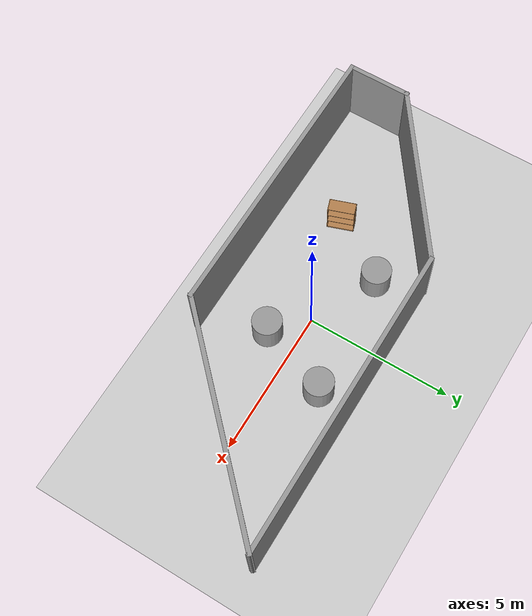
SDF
<sdf version="1.7">
 <world name="default">
  <light name="sun" type="directional">
   <pose>0 0 10 0 -0 0</pose>
   <diffuse>0.8 0.8 0.8 1</diffuse>
   <specular>0.2 0.2 0.2 1</specular>
   <attenuation>
    <range>1000</range>
    <constant>0.9</constant>
    <linear>0.01</linear>
    <quadratic>0.001</quadratic>
   </attenuation>
   <direction>-0.5 0.1 -0.9</direction>
   <spot><inner_angle>0</inner_angle><outer_angle>0</outer_angle><falloff>0</falloff></spot>
  </light>
  <model name="ground_plane">
   <static>1</static>
   <link name="link">
    <collision name="collision">
     <geometry><plane><normal>0 0 1</normal><size>100 100</size></plane></geometry>
     <surface><friction><ode><mu>100</mu><mu2>50</mu2></ode></friction></surface>
    </collision>
    <visual name="visual">
     <cast_shadows>0</cast_shadows>
     <geometry><plane><normal>0 0 1</normal><size>100 100</size></plane></geometry>
     <material>
      <script><uri>file://media/materials/scripts/gazebo.material</uri><name>Gazebo/Grey</name></script>
     </material>
    </visual>
   </link>
  </model>
  <gravity>0 0 -9.8</gravity>
  <magnetic_field>6e-06 2.3e-05 -4.2e-05</magnetic_field>
  <atmosphere type="adiabatic"/>
  <physics type="ode">
   <max_step_size>0.001</max_step_size>
   <real_time_factor>1</real_time_factor>
   <real_time_update_rate>1000</real_time_update_rate>
  </physics>
  <scene><ambient>0.4 0.4 0.4 1</ambient><background>0.7 0.7 0.7 1</background><shadows>1</shadows></scene>
  <audio><device>default</device></audio>
  <spherical_coordinates>
   <surface_model>EARTH_WGS84</surface_model>
   <latitude_deg>0</latitude_deg>
   <longitude_deg>0</longitude_deg>
   <elevation>0</elevation>
   <heading_deg>0</heading_deg>
  </spherical_coordinates>
  <model name="labirint1">
   <pose>0.021246 0.161065 0 0 -0 0</pose>
   <link name="Wall_0">
    <collision name="Wall_0_Collision">
     <geometry><box><size>2.25 0.15 2.5</size></box></geometry>
     <pose>0 0 1.25 0 -0 0</pose>
    </collision>
    <visual name="Wall_0_Visual">
     <pose>0 0 1.25 0 -0 0</pose>
     <geometry><box><size>2.25 0.15 2.5</size></box></geometry>
     <material>
      <script><uri>file://media/materials/scripts/gazebo.material</uri><name>Gazebo/Grey</name></script>
      <ambient>1 1 1 1</ambient>
     </material>
     <meta><layer>0</layer></meta>
    </visual>
    <pose>-7.78942 -2.19197 0 0 -0 -1.5708</pose>
   </link>
   <link name="Wall_1">
    <collision name="Wall_1_Collision">
     <geometry><box><size>10 0.15 2.5</size></box></geometry>
     <pose>0 0 1.25 0 -0 0</pose>
    </collision>
    <visual name="Wall_1_Visual">
     <pose>0 0 1.25 0 -0 0</pose>
     <geometry><box><size>10 0.15 2.5</size></box></geometry>
     <material>
      <script><uri>file://media/materials/scripts/gazebo.material</uri><name>Gazebo/Grey</name></script>
      <ambient>1 1 1 1</ambient>
     </material>
     <meta><layer>0</layer></meta>
    </visual>
    <pose>-2.86442 -3.24197 0 0 -0 0</pose>
   </link>
   <link name="Wall_2">
    <collision name="Wall_2_Collision">
     <geometry><box><size>8.25 0.15 2.5</size></box></geometry>
     <pose>0 0 1.25 0 -0 0</pose>
    </collision>
    <visual name="Wall_2_Visual">
     <pose>0 0 1.25 0 -0 0</pose>
     <geometry><box><size>8.25 0.15 2.5</size></box></geometry>
     <material>
      <script><uri>file://media/materials/scripts/gazebo.material</uri><name>Gazebo/Grey</name></script>
      <ambient>1 1 1 1</ambient>
     </material>
     <meta><layer>0</layer></meta>
    </visual>
    <pose>4.92436 -0.378184 0 0 -0 0.785398</pose>
   </link>
   <link name="Wall_3">
    <collision name="Wall_3_Collision">
     <geometry><box><size>10.75 0.15 2.5</size></box></geometry>
     <pose>0 0 1.25 0 -0 0</pose>
    </collision>
    <visual name="Wall_3_Visual">
     <pose>0 0 1.25 0 -0 0</pose>
     <geometry><box><size>10.75 0.15 2.5</size></box></geometry>
     <material>
      <script><uri>file://media/materials/scripts/gazebo.material</uri><name>Gazebo/Grey</name></script>
      <ambient>1 1 1 1</ambient>
     </material>
     <meta><layer>0</layer></meta>
    </visual>
    <pose>2.48814 2.4856 0 0 -0 3.14159</pose>
   </link>
   <link name="Wall_4">
    <collision name="Wall_4_Collision">
     <geometry><box><size>6.30917 0.15 2.5</size></box></geometry>
     <pose>0 0 1.25 0 -0 0</pose>
    </collision>
    <visual name="Wall_4_Visual">
     <pose>0 0 1.25 0 -0 0</pose>
     <geometry><box><size>6.30917 0.15 2.5</size></box></geometry>
     <material>
      <script><uri>file://media/materials/scripts/gazebo.material</uri><name>Gazebo/Grey</name></script>
      <ambient>1 1 1 1</ambient>
     </material>
     <meta><layer>0</layer></meta>
    </visual>
    <pose>-5.30064 0.671816 0 0 -0 -2.51181</pose>
   </link>
   <static>1</static>
  </model>
  <model name="unit_cylinder">
   <pose>2.00802 1.45711 0.499993 -3e-06 -3e-06 0.000529</pose>
   <link name="link">
    <inertial>
     <mass>1</mass>
     <inertia><ixx>0.145833</ixx><ixy>0</ixy><ixz>0</ixz><iyy>0.145833</iyy><iyz>0</iyz><izz>0.125</izz></inertia>
    </inertial>
    <collision name="collision">
     <geometry><cylinder><radius>0.5</radius><length>1</length></cylinder></geometry>
    </collision>
    <visual name="visual">
     <geometry><cylinder><radius>0.5</radius><length>1</length></cylinder></geometry>
     <material>
      <script><name>Gazebo/Grey</name><uri>file://media/materials/scripts/gazebo.material</uri></script>
     </material>
    </visual>
   </link>
  </model>
  <model name="unit_cylinder_0">
   <pose>1.10125 -1.00063 0.499998 3e-06 -3e-06 0</pose>
   <link name="link">
    <inertial>
     <mass>1</mass>
     <inertia><ixx>0.145833</ixx><ixy>0</ixy><ixz>0</ixz><iyy>0.145833</iyy><iyz>0</iyz><izz>0.125</izz></inertia>
    </inertial>
    <collision name="collision">
     <geometry><cylinder><radius>0.5</radius><length>1</length></cylinder></geometry>
    </collision>
    <visual name="visual">
     <geometry><cylinder><radius>0.5</radius><length>1</length></cylinder></geometry>
     <material>
      <script><name>Gazebo/Grey</name><uri>file://media/materials/scripts/gazebo.material</uri></script>
     </material>
    </visual>
   </link>
  </model>
  <model name="unit_cylinder_1">
   <pose>-2.24302 1.10654 0.499997 4e-06 4e-06 -0</pose>
   <link name="link">
    <inertial>
     <mass>1</mass>
     <inertia><ixx>0.145833</ixx><ixy>0</ixy><ixz>0</ixz><iyy>0.145833</iyy><iyz>0</iyz><izz>0.125</izz></inertia>
    </inertial>
    <collision name="collision">
     <geometry><cylinder><radius>0.5</radius><length>1</length></cylinder></geometry>
    </collision>
    <visual name="visual">
     <geometry><cylinder><radius>0.5</radius><length>1</length></cylinder></geometry>
     <material>
      <script><name>Gazebo/Grey</name><uri>file://media/materials/scripts/gazebo.material</uri></script>
     </material>
    </visual>
   </link>
  </model>
  <model name="bookshelf">
   <static>1</static>
   <link name="link">
    <inertial><mass>1</mass></inertial>
    <collision name="back">
     <pose>0 0.005 0.6 0 -0 0</pose>
     <geometry><box><size>0.9 0.01 1.2</size></box></geometry>
    </collision>
    <visual name="visual1">
     <pose>0 0.005 0.6 0 -0 0</pose>
     <geometry><box><size>0.9 0.01 1.2</size></box></geometry>
     <material>
      <script><uri>file://media/materials/scripts/gazebo.material</uri><name>Gazebo/Wood</name></script>
     </material>
    </visual>
    <collision name="left_side">
     <pose>0.45 -0.195 0.6 0 -0 0</pose>
     <geometry><box><size>0.02 0.4 1.2</size></box></geometry>
    </collision>
    <visual name="visual2">
     <pose>0.45 -0.195 0.6 0 -0 0</pose>
     <geometry><box><size>0.02 0.4 1.2</size></box></geometry>
     <material>
      <script><uri>file://media/materials/scripts/gazebo.material</uri><name>Gazebo/Wood</name></script>
     </material>
    </visual>
    <collision name="right_side">
     <pose>-0.45 -0.195 0.6 0 -0 0</pose>
     <geometry><box><size>0.02 0.4 1.2</size></box></geometry>
    </collision>
    <visual name="visual3">
     <pose>-0.45 -0.195 0.6 0 -0 0</pose>
     <geometry><box><size>0.02 0.4 1.2</size></box></geometry>
     <material>
      <script><uri>file://media/materials/scripts/gazebo.material</uri><name>Gazebo/Wood</name></script>
     </material>
    </visual>
    <collision name="bottom">
     <pose>0 -0.195 0.03 0 -0 0</pose>
     <geometry><box><size>0.88 0.4 0.06</size></box></geometry>
    </collision>
    <visual name="visual4">
     <pose>0 -0.195 0.03 0 -0 0</pose>
     <geometry><box><size>0.88 0.4 0.06</size></box></geometry>
     <material>
      <script><uri>file://media/materials/scripts/gazebo.material</uri><name>Gazebo/Wood</name></script>
     </material>
    </visual>
    <collision name="top">
     <pose>0 -0.195 1.19 0 -0 0</pose>
     <geometry><box><size>0.88 0.4 0.02</size></box></geometry>
    </collision>
    <visual name="visual5">
     <pose>0 -0.195 1.19 0 -0 0</pose>
     <geometry><box><size>0.88 0.4 0.02</size></box></geometry>
     <material>
      <script><uri>file://media/materials/scripts/gazebo.material</uri><name>Gazebo/Wood</name></script>
     </material>
    </visual>
    <collision name="low_shelf">
     <pose>0 -0.195 0.43 0 -0 0</pose>
     <geometry><box><size>0.88 0.4 0.02</size></box></geometry>
    </collision>
    <visual name="visual6">
     <pose>0 -0.195 0.43 0 -0 0</pose>
     <geometry><box><size>0.88 0.4 0.02</size></box></geometry>
     <material>
      <script><uri>file://media/materials/scripts/gazebo.material</uri><name>Gazebo/Wood</name></script>
     </material>
    </visual>
    <collision name="high_shelf">
     <pose>0 -0.195 0.8 0 -0 0</pose>
     <geometry><box><size>0.88 0.4 0.02</size></box></geometry>
    </collision>
    <visual name="visual7">
     <pose>0 -0.195 0.8 0 -0 0</pose>
     <geometry><box><size>0.88 0.4 0.02</size></box></geometry>
     <material>
      <script><uri>file://media/materials/scripts/gazebo.material</uri><name>Gazebo/Wood</name></script>
     </material>
    </visual>
   </link>
   <pose>-3.77434 -1.0427 0 0 -0 1.90381</pose>
  </model>
 </world>
</sdf>
